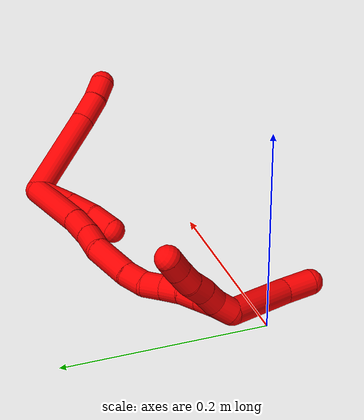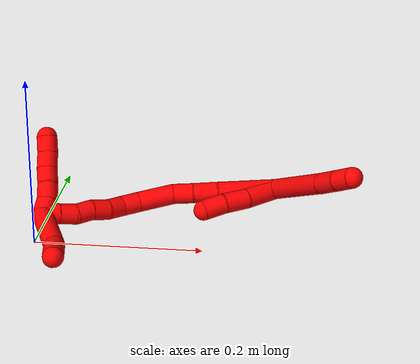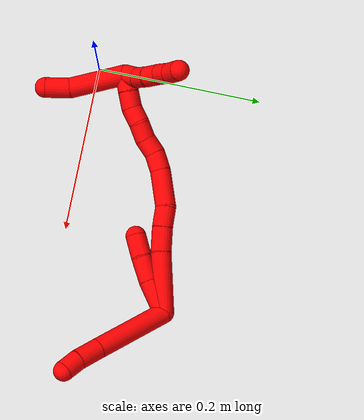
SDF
<sdf version="1.7">
 <world name="default">
  <model name="2">
   <static>0</static>
   <link name="2">
    <collision name="collision-cylinder-e_1_2_8">
     <pose>0.031932 -0.035418 -0.008827 1.81504 0.718719 0.896318</pose>
     <geometry><cylinder><radius>0.0125</radius><length>0.096995</length></cylinder></geometry>
     <surface>
      <friction><ode><mu>1.16</mu><mu2>1.16</mu2><slip1>0</slip1><slip2>0</slip2></ode></friction>
      <contact><ode><kp>1e+06</kp><kd>1</kd><max_vel>0</max_vel><min_depth>0.001</min_depth></ode></contact>
     </surface>
    </collision>
    <visual name="visual-cylinder-e_1_2_8">
     <pose>0.031932 -0.035418 -0.008827 1.81504 0.718719 0.896318</pose>
     <geometry><cylinder><radius>0.0125</radius><length>0.096995</length></cylinder></geometry>
     <material><ambient>1 0 0 1</ambient></material>
    </visual>
    <collision name="collision-cylinder-e_2_8_9">
     <pose>0.073713 -0.081998 -0.019891 1.76858 0.713271 0.853406</pose>
     <geometry><cylinder><radius>0.0125</radius><length>0.030106</length></cylinder></geometry>
     <surface>
      <friction><ode><mu>1.16</mu><mu2>1.16</mu2><slip1>0</slip1><slip2>0</slip2></ode></friction>
      <contact><ode><kp>1e+06</kp><kd>1</kd><max_vel>0</max_vel><min_depth>0.001</min_depth></ode></contact>
     </surface>
    </collision>
    <visual name="visual-cylinder-e_2_8_9">
     <pose>0.073713 -0.081998 -0.019891 1.76858 0.713271 0.853406</pose>
     <geometry><cylinder><radius>0.0125</radius><length>0.030106</length></cylinder></geometry>
     <material><ambient>1 0 0 1</ambient></material>
    </visual>
    <collision name="collision-cylinder-e_3_9_6">
     <pose>0.092023 -0.100839 -0.022862 1.6662 0.831522 0.90439</pose>
     <geometry><cylinder><radius>0.0125</radius><length>0.022899</length></cylinder></geometry>
     <surface>
      <friction><ode><mu>1.16</mu><mu2>1.16</mu2><slip1>0</slip1><slip2>0</slip2></ode></friction>
      <contact><ode><kp>1e+06</kp><kd>1</kd><max_vel>0</max_vel><min_depth>0.001</min_depth></ode></contact>
     </surface>
    </collision>
    <visual name="visual-cylinder-e_3_9_6">
     <pose>0.092023 -0.100839 -0.022862 1.6662 0.831522 0.90439</pose>
     <geometry><cylinder><radius>0.0125</radius><length>0.022899</length></cylinder></geometry>
     <material><ambient>1 0 0 1</ambient></material>
    </visual>
    <collision name="collision-cylinder-e_1_2_10">
     <pose>-0.015191 -0.007222 -0.012775 2.62709 -0.80269 -2.03171</pose>
     <geometry><cylinder><radius>0.0125</radius><length>0.042244</length></cylinder></geometry>
     <surface>
      <friction><ode><mu>1.16</mu><mu2>1.16</mu2><slip1>0</slip1><slip2>0</slip2></ode></friction>
      <contact><ode><kp>1e+06</kp><kd>1</kd><max_vel>0</max_vel><min_depth>0.001</min_depth></ode></contact>
     </surface>
    </collision>
    <visual name="visual-cylinder-e_1_2_10">
     <pose>-0.015191 -0.007222 -0.012775 2.62709 -0.80269 -2.03171</pose>
     <geometry><cylinder><radius>0.0125</radius><length>0.042244</length></cylinder></geometry>
     <material><ambient>1 0 0 1</ambient></material>
    </visual>
    <collision name="collision-cylinder-e_2_10_11">
     <pose>-0.042499 -0.019229 -0.033375 2.59274 -0.922792 -2.11114</pose>
     <geometry><cylinder><radius>0.0125</radius><length>0.030393</length></cylinder></geometry>
     <surface>
      <friction><ode><mu>1.16</mu><mu2>1.16</mu2><slip1>0</slip1><slip2>0</slip2></ode></friction>
      <contact><ode><kp>1e+06</kp><kd>1</kd><max_vel>0</max_vel><min_depth>0.001</min_depth></ode></contact>
     </surface>
    </collision>
    <visual name="visual-cylinder-e_2_10_11">
     <pose>-0.042499 -0.019229 -0.033375 2.59274 -0.922792 -2.11114</pose>
     <geometry><cylinder><radius>0.0125</radius><length>0.030393</length></cylinder></geometry>
     <material><ambient>1 0 0 1</ambient></material>
    </visual>
    <collision name="collision-cylinder-e_3_11_5">
     <pose>-0.065648 -0.026474 -0.048908 2.83263 -0.938111 -2.54535</pose>
     <geometry><cylinder><radius>0.0125</radius><length>0.027364</length></cylinder></geometry>
     <surface>
      <friction><ode><mu>1.16</mu><mu2>1.16</mu2><slip1>0</slip1><slip2>0</slip2></ode></friction>
      <contact><ode><kp>1e+06</kp><kd>1</kd><max_vel>0</max_vel><min_depth>0.001</min_depth></ode></contact>
     </surface>
    </collision>
    <visual name="visual-cylinder-e_3_11_5">
     <pose>-0.065648 -0.026474 -0.048908 2.83263 -0.938111 -2.54535</pose>
     <geometry><cylinder><radius>0.0125</radius><length>0.027364</length></cylinder></geometry>
     <material><ambient>1 0 0 1</ambient></material>
    </visual>
    <collision name="collision-cylinder-e_1_2_12">
     <pose>-0.034059 -0.007375 -0.011247 2.56121 -1.1947 -2.31428</pose>
     <geometry><cylinder><radius>0.0125</radius><length>0.073236</length></cylinder></geometry>
     <surface>
      <friction><ode><mu>1.16</mu><mu2>1.16</mu2><slip1>0</slip1><slip2>0</slip2></ode></friction>
      <contact><ode><kp>1e+06</kp><kd>1</kd><max_vel>0</max_vel><min_depth>0.001</min_depth></ode></contact>
     </surface>
    </collision>
    <visual name="visual-cylinder-e_1_2_12">
     <pose>-0.034059 -0.007375 -0.011247 2.56121 -1.1947 -2.31428</pose>
     <geometry><cylinder><radius>0.0125</radius><length>0.073236</length></cylinder></geometry>
     <material><ambient>1 0 0 1</ambient></material>
    </visual>
    <collision name="collision-cylinder-e_2_12_13">
     <pose>-0.082344 -0.01621 -0.026513 2.79307 -1.27882 -2.67667</pose>
     <geometry><cylinder><radius>0.0125</radius><length>0.02971</length></cylinder></geometry>
     <surface>
      <friction><ode><mu>1.16</mu><mu2>1.16</mu2><slip1>0</slip1><slip2>0</slip2></ode></friction>
      <contact><ode><kp>1e+06</kp><kd>1</kd><max_vel>0</max_vel><min_depth>0.001</min_depth></ode></contact>
     </surface>
    </collision>
    <visual name="visual-cylinder-e_2_12_13">
     <pose>-0.082344 -0.01621 -0.026513 2.79307 -1.27882 -2.67667</pose>
     <geometry><cylinder><radius>0.0125</radius><length>0.02971</length></cylinder></geometry>
     <material><ambient>1 0 0 1</ambient></material>
    </visual>
    <collision name="collision-cylinder-e_3_13_14">
     <pose>-0.108958 -0.017845 -0.03318 3.07582 -1.3598 -3.06026</pose>
     <geometry><cylinder><radius>0.0125</radius><length>0.025338</length></cylinder></geometry>
     <surface>
      <friction><ode><mu>1.16</mu><mu2>1.16</mu2><slip1>0</slip1><slip2>0</slip2></ode></friction>
      <contact><ode><kp>1e+06</kp><kd>1</kd><max_vel>0</max_vel><min_depth>0.001</min_depth></ode></contact>
     </surface>
    </collision>
    <visual name="visual-cylinder-e_3_13_14">
     <pose>-0.108958 -0.017845 -0.03318 3.07582 -1.3598 -3.06026</pose>
     <geometry><cylinder><radius>0.0125</radius><length>0.025338</length></cylinder></geometry>
     <material><ambient>1 0 0 1</ambient></material>
    </visual>
    <collision name="collision-cylinder-e_4_14_15">
     <pose>-0.141075 -0.021268 -0.046357 2.84232 -1.0614 -2.63866</pose>
     <geometry><cylinder><radius>0.0125</radius><length>0.045196</length></cylinder></geometry>
     <surface>
      <friction><ode><mu>1.16</mu><mu2>1.16</mu2><slip1>0</slip1><slip2>0</slip2></ode></friction>
      <contact><ode><kp>1e+06</kp><kd>1</kd><max_vel>0</max_vel><min_depth>0.001</min_depth></ode></contact>
     </surface>
    </collision>
    <visual name="visual-cylinder-e_4_14_15">
     <pose>-0.141075 -0.021268 -0.046357 2.84232 -1.0614 -2.63866</pose>
     <geometry><cylinder><radius>0.0125</radius><length>0.045196</length></cylinder></geometry>
     <material><ambient>1 0 0 1</ambient></material>
    </visual>
    <collision name="collision-cylinder-e_5_15_16">
     <pose>-0.169914 -0.027744 -0.062934 2.65143 -0.925806 -2.21245</pose>
     <geometry><cylinder><radius>0.0125</radius><length>0.022801</length></cylinder></geometry>
     <surface>
      <friction><ode><mu>1.16</mu><mu2>1.16</mu2><slip1>0</slip1><slip2>0</slip2></ode></friction>
      <contact><ode><kp>1e+06</kp><kd>1</kd><max_vel>0</max_vel><min_depth>0.001</min_depth></ode></contact>
     </surface>
    </collision>
    <visual name="visual-cylinder-e_5_15_16">
     <pose>-0.169914 -0.027744 -0.062934 2.65143 -0.925806 -2.21245</pose>
     <geometry><cylinder><radius>0.0125</radius><length>0.022801</length></cylinder></geometry>
     <material><ambient>1 0 0 1</ambient></material>
    </visual>
    <collision name="collision-cylinder-e_6_16_17">
     <pose>-0.18538 -0.036616 -0.07512 2.39808 -0.651198 -1.42735</pose>
     <geometry><cylinder><radius>0.0125</radius><length>0.020971</length></cylinder></geometry>
     <surface>
      <friction><ode><mu>1.16</mu><mu2>1.16</mu2><slip1>0</slip1><slip2>0</slip2></ode></friction>
      <contact><ode><kp>1e+06</kp><kd>1</kd><max_vel>0</max_vel><min_depth>0.001</min_depth></ode></contact>
     </surface>
    </collision>
    <visual name="visual-cylinder-e_6_16_17">
     <pose>-0.18538 -0.036616 -0.07512 2.39808 -0.651198 -1.42735</pose>
     <geometry><cylinder><radius>0.0125</radius><length>0.020971</length></cylinder></geometry>
     <material><ambient>1 0 0 1</ambient></material>
    </visual>
    <collision name="collision-cylinder-e_7_17_18">
     <pose>-0.199776 -0.047784 -0.085455 2.22042 -0.858986 -1.49083</pose>
     <geometry><cylinder><radius>0.0125</radius><length>0.021238</length></cylinder></geometry>
     <surface>
      <friction><ode><mu>1.16</mu><mu2>1.16</mu2><slip1>0</slip1><slip2>0</slip2></ode></friction>
      <contact><ode><kp>1e+06</kp><kd>1</kd><max_vel>0</max_vel><min_depth>0.001</min_depth></ode></contact>
     </surface>
    </collision>
    <visual name="visual-cylinder-e_7_17_18">
     <pose>-0.199776 -0.047784 -0.085455 2.22042 -0.858986 -1.49083</pose>
     <geometry><cylinder><radius>0.0125</radius><length>0.021238</length></cylinder></geometry>
     <material><ambient>1 0 0 1</ambient></material>
    </visual>
    <collision name="collision-cylinder-e_8_18_19">
     <pose>-0.214997 -0.057254 -0.095654 2.55999 -0.785113 -1.88982</pose>
     <geometry><cylinder><radius>0.0125</radius><length>0.020315</length></cylinder></geometry>
     <surface>
      <friction><ode><mu>1.16</mu><mu2>1.16</mu2><slip1>0</slip1><slip2>0</slip2></ode></friction>
      <contact><ode><kp>1e+06</kp><kd>1</kd><max_vel>0</max_vel><min_depth>0.001</min_depth></ode></contact>
     </surface>
    </collision>
    <visual name="visual-cylinder-e_8_18_19">
     <pose>-0.214997 -0.057254 -0.095654 2.55999 -0.785113 -1.88982</pose>
     <geometry><cylinder><radius>0.0125</radius><length>0.020315</length></cylinder></geometry>
     <material><ambient>1 0 0 1</ambient></material>
    </visual>
    <collision name="collision-cylinder-e_9_19_20">
     <pose>-0.231275 -0.065513 -0.104881 2.21281 -1.03642 -1.69993</pose>
     <geometry><cylinder><radius>0.0125</radius><length>0.021143</length></cylinder></geometry>
     <surface>
      <friction><ode><mu>1.16</mu><mu2>1.16</mu2><slip1>0</slip1><slip2>0</slip2></ode></friction>
      <contact><ode><kp>1e+06</kp><kd>1</kd><max_vel>0</max_vel><min_depth>0.001</min_depth></ode></contact>
     </surface>
    </collision>
    <visual name="visual-cylinder-e_9_19_20">
     <pose>-0.231275 -0.065513 -0.104881 2.21281 -1.03642 -1.69993</pose>
     <geometry><cylinder><radius>0.0125</radius><length>0.021143</length></cylinder></geometry>
     <material><ambient>1 0 0 1</ambient></material>
    </visual>
    <collision name="collision-cylinder-e_10_20_1">
     <pose>-0.249108 -0.073227 -0.111661 2.37833 -1.05775 -1.93812</pose>
     <geometry><cylinder><radius>0.0125</radius><length>0.020052</length></cylinder></geometry>
     <surface>
      <friction><ode><mu>1.16</mu><mu2>1.16</mu2><slip1>0</slip1><slip2>0</slip2></ode></friction>
      <contact><ode><kp>1e+06</kp><kd>1</kd><max_vel>0</max_vel><min_depth>0.001</min_depth></ode></contact>
     </surface>
    </collision>
    <visual name="visual-cylinder-e_10_20_1">
     <pose>-0.249108 -0.073227 -0.111661 2.37833 -1.05775 -1.93812</pose>
     <geometry><cylinder><radius>0.0125</radius><length>0.020052</length></cylinder></geometry>
     <material><ambient>1 0 0 1</ambient></material>
    </visual>
    <collision name="collision-cylinder-e_1_1_21">
     <pose>-0.239623 -0.092965 -0.139918 2.55728 0.551548 1.5099</pose>
     <geometry><cylinder><radius>0.0125</radius><length>0.06954</length></cylinder></geometry>
     <surface>
      <friction><ode><mu>1.16</mu><mu2>1.16</mu2><slip1>0</slip1><slip2>0</slip2></ode></friction>
      <contact><ode><kp>1e+06</kp><kd>1</kd><max_vel>0</max_vel><min_depth>0.001</min_depth></ode></contact>
     </surface>
    </collision>
    <visual name="visual-cylinder-e_1_1_21">
     <pose>-0.239623 -0.092965 -0.139918 2.55728 0.551548 1.5099</pose>
     <geometry><cylinder><radius>0.0125</radius><length>0.06954</length></cylinder></geometry>
     <material><ambient>1 0 0 1</ambient></material>
    </visual>
    <collision name="collision-cylinder-e_2_21_4">
     <pose>-0.216798 -0.119086 -0.175342 2.40194 0.307225 0.759971</pose>
     <geometry><cylinder><radius>0.0125</radius><length>0.03046</length></cylinder></geometry>
     <surface>
      <friction><ode><mu>1.16</mu><mu2>1.16</mu2><slip1>0</slip1><slip2>0</slip2></ode></friction>
      <contact><ode><kp>1e+06</kp><kd>1</kd><max_vel>0</max_vel><min_depth>0.001</min_depth></ode></contact>
     </surface>
    </collision>
    <visual name="visual-cylinder-e_2_21_4">
     <pose>-0.216798 -0.119086 -0.175342 2.40194 0.307225 0.759971</pose>
     <geometry><cylinder><radius>0.0125</radius><length>0.03046</length></cylinder></geometry>
     <material><ambient>1 0 0 1</ambient></material>
    </visual>
    <collision name="collision-cylinder-e_1_1_22">
     <pose>-0.257919 -0.07623 -0.105225 -0.03998 -0.007633 0.000153</pose>
     <geometry><cylinder><radius>0.0125</radius><length>0.02</length></cylinder></geometry>
     <surface>
      <friction><ode><mu>1.16</mu><mu2>1.16</mu2><slip1>0</slip1><slip2>0</slip2></ode></friction>
      <contact><ode><kp>1e+06</kp><kd>1</kd><max_vel>0</max_vel><min_depth>0.001</min_depth></ode></contact>
     </surface>
    </collision>
    <visual name="visual-cylinder-e_1_1_22">
     <pose>-0.257919 -0.07623 -0.105225 -0.03998 -0.007633 0.000153</pose>
     <geometry><cylinder><radius>0.0125</radius><length>0.02</length></cylinder></geometry>
     <material><ambient>1 0 0 1</ambient></material>
    </visual>
    <collision name="collision-cylinder-e_2_22_23">
     <pose>-0.259786 -0.077909 -0.085617 0.212898 -0.18005 -0.01929</pose>
     <geometry><cylinder><radius>0.0125</radius><length>0.02</length></cylinder></geometry>
     <surface>
      <friction><ode><mu>1.16</mu><mu2>1.16</mu2><slip1>0</slip1><slip2>0</slip2></ode></friction>
      <contact><ode><kp>1e+06</kp><kd>1</kd><max_vel>0</max_vel><min_depth>0.001</min_depth></ode></contact>
     </surface>
    </collision>
    <visual name="visual-cylinder-e_2_22_23">
     <pose>-0.259786 -0.077909 -0.085617 0.212898 -0.18005 -0.01929</pose>
     <geometry><cylinder><radius>0.0125</radius><length>0.02</length></cylinder></geometry>
     <material><ambient>1 0 0 1</ambient></material>
    </visual>
    <collision name="collision-cylinder-e_3_23_24">
     <pose>-0.264639 -0.080866 -0.066522 0.092465 -0.311198 -0.014515</pose>
     <geometry><cylinder><radius>0.0125</radius><length>0.02</length></cylinder></geometry>
     <surface>
      <friction><ode><mu>1.16</mu><mu2>1.16</mu2><slip1>0</slip1><slip2>0</slip2></ode></friction>
      <contact><ode><kp>1e+06</kp><kd>1</kd><max_vel>0</max_vel><min_depth>0.001</min_depth></ode></contact>
     </surface>
    </collision>
    <visual name="visual-cylinder-e_3_23_24">
     <pose>-0.264639 -0.080866 -0.066522 0.092465 -0.311198 -0.014515</pose>
     <geometry><cylinder><radius>0.0125</radius><length>0.02</length></cylinder></geometry>
     <material><ambient>1 0 0 1</ambient></material>
    </visual>
    <collision name="collision-cylinder-e_4_24_25">
     <pose>-0.269426 -0.084115 -0.047482 0.243003 -0.173324 -0.021216</pose>
     <geometry><cylinder><radius>0.0125</radius><length>0.02</length></cylinder></geometry>
     <surface>
      <friction><ode><mu>1.16</mu><mu2>1.16</mu2><slip1>0</slip1><slip2>0</slip2></ode></friction>
      <contact><ode><kp>1e+06</kp><kd>1</kd><max_vel>0</max_vel><min_depth>0.001</min_depth></ode></contact>
     </surface>
    </collision>
    <visual name="visual-cylinder-e_4_24_25">
     <pose>-0.269426 -0.084115 -0.047482 0.243003 -0.173324 -0.021216</pose>
     <geometry><cylinder><radius>0.0125</radius><length>0.02</length></cylinder></geometry>
     <material><ambient>1 0 0 1</ambient></material>
    </visual>
    <collision name="collision-cylinder-e_5_25_3">
     <pose>-0.273581 -0.0896 -0.028735 0.326837 -0.245555 -0.040688</pose>
     <geometry><cylinder><radius>0.0125</radius><length>0.02</length></cylinder></geometry>
     <surface>
      <friction><ode><mu>1.16</mu><mu2>1.16</mu2><slip1>0</slip1><slip2>0</slip2></ode></friction>
      <contact><ode><kp>1e+06</kp><kd>1</kd><max_vel>0</max_vel><min_depth>0.001</min_depth></ode></contact>
     </surface>
    </collision>
    <visual name="visual-cylinder-e_5_25_3">
     <pose>-0.273581 -0.0896 -0.028735 0.326837 -0.245555 -0.040688</pose>
     <geometry><cylinder><radius>0.0125</radius><length>0.02</length></cylinder></geometry>
     <material><ambient>1 0 0 1</ambient></material>
    </visual>
    <collision name="collision-sphere-3">
     <pose>-0.276012 -0.092714 -0.019548 0 -0 0</pose>
     <geometry><sphere><radius>0.0125</radius></sphere></geometry>
     <surface>
      <friction><ode><mu>1.16</mu><mu2>1.16</mu2><slip1>0</slip1><slip2>0</slip2></ode></friction>
      <contact><ode><kp>1e+06</kp><kd>1</kd><max_vel>0</max_vel><min_depth>0.001</min_depth></ode></contact>
     </surface>
    </collision>
    <visual name="visual-sphere-3">
     <pose>-0.276012 -0.092714 -0.019548 0 -0 0</pose>
     <geometry><sphere><radius>0.0125</radius></sphere></geometry>
     <material><ambient>1 0 0 1</ambient></material>
    </visual>
    <collision name="collision-sphere-25">
     <pose>-0.27115 -0.086486 -0.037921 0 -0 0</pose>
     <geometry><sphere><radius>0.0125</radius></sphere></geometry>
     <surface>
      <friction><ode><mu>1.16</mu><mu2>1.16</mu2><slip1>0</slip1><slip2>0</slip2></ode></friction>
      <contact><ode><kp>1e+06</kp><kd>1</kd><max_vel>0</max_vel><min_depth>0.001</min_depth></ode></contact>
     </surface>
    </collision>
    <visual name="visual-sphere-25">
     <pose>-0.27115 -0.086486 -0.037921 0 -0 0</pose>
     <geometry><sphere><radius>0.0125</radius></sphere></geometry>
     <material><ambient>1 0 0 1</ambient></material>
    </visual>
    <collision name="collision-sphere-24">
     <pose>-0.267701 -0.081745 -0.057043 0 -0 0</pose>
     <geometry><sphere><radius>0.0125</radius></sphere></geometry>
     <surface>
      <friction><ode><mu>1.16</mu><mu2>1.16</mu2><slip1>0</slip1><slip2>0</slip2></ode></friction>
      <contact><ode><kp>1e+06</kp><kd>1</kd><max_vel>0</max_vel><min_depth>0.001</min_depth></ode></contact>
     </surface>
    </collision>
    <visual name="visual-sphere-24">
     <pose>-0.267701 -0.081745 -0.057043 0 -0 0</pose>
     <geometry><sphere><radius>0.0125</radius></sphere></geometry>
     <material><ambient>1 0 0 1</ambient></material>
    </visual>
    <collision name="collision-sphere-23">
     <pose>-0.261577 -0.079987 -0.076001 0 -0 0</pose>
     <geometry><sphere><radius>0.0125</radius></sphere></geometry>
     <surface>
      <friction><ode><mu>1.16</mu><mu2>1.16</mu2><slip1>0</slip1><slip2>0</slip2></ode></friction>
      <contact><ode><kp>1e+06</kp><kd>1</kd><max_vel>0</max_vel><min_depth>0.001</min_depth></ode></contact>
     </surface>
    </collision>
    <visual name="visual-sphere-23">
     <pose>-0.261577 -0.079987 -0.076001 0 -0 0</pose>
     <geometry><sphere><radius>0.0125</radius></sphere></geometry>
     <material><ambient>1 0 0 1</ambient></material>
    </visual>
    <collision name="collision-sphere-22">
     <pose>-0.257996 -0.07583 -0.095233 0 -0 0</pose>
     <geometry><sphere><radius>0.0125</radius></sphere></geometry>
     <surface>
      <friction><ode><mu>1.16</mu><mu2>1.16</mu2><slip1>0</slip1><slip2>0</slip2></ode></friction>
      <contact><ode><kp>1e+06</kp><kd>1</kd><max_vel>0</max_vel><min_depth>0.001</min_depth></ode></contact>
     </surface>
    </collision>
    <visual name="visual-sphere-22">
     <pose>-0.257996 -0.07583 -0.095233 0 -0 0</pose>
     <geometry><sphere><radius>0.0125</radius></sphere></geometry>
     <material><ambient>1 0 0 1</ambient></material>
    </visual>
    <collision name="collision-sphere-4">
     <pose>-0.212192 -0.128871 -0.186066 0 -0 0</pose>
     <geometry><sphere><radius>0.0125</radius></sphere></geometry>
     <surface>
      <friction><ode><mu>1.16</mu><mu2>1.16</mu2><slip1>0</slip1><slip2>0</slip2></ode></friction>
      <contact><ode><kp>1e+06</kp><kd>1</kd><max_vel>0</max_vel><min_depth>0.001</min_depth></ode></contact>
     </surface>
    </collision>
    <visual name="visual-sphere-4">
     <pose>-0.212192 -0.128871 -0.186066 0 -0 0</pose>
     <geometry><sphere><radius>0.0125</radius></sphere></geometry>
     <material><ambient>1 0 0 1</ambient></material>
    </visual>
    <collision name="collision-sphere-21">
     <pose>-0.221404 -0.109301 -0.164618 0 -0 0</pose>
     <geometry><sphere><radius>0.0125</radius></sphere></geometry>
     <surface>
      <friction><ode><mu>1.16</mu><mu2>1.16</mu2><slip1>0</slip1><slip2>0</slip2></ode></friction>
      <contact><ode><kp>1e+06</kp><kd>1</kd><max_vel>0</max_vel><min_depth>0.001</min_depth></ode></contact>
     </surface>
    </collision>
    <visual name="visual-sphere-21">
     <pose>-0.221404 -0.109301 -0.164618 0 -0 0</pose>
     <geometry><sphere><radius>0.0125</radius></sphere></geometry>
     <material><ambient>1 0 0 1</ambient></material>
    </visual>
    <collision name="collision-sphere-1">
     <pose>-0.257843 -0.076629 -0.115217 0 -0 0</pose>
     <geometry><sphere><radius>0.0125</radius></sphere></geometry>
     <surface>
      <friction><ode><mu>1.16</mu><mu2>1.16</mu2><slip1>0</slip1><slip2>0</slip2></ode></friction>
      <contact><ode><kp>1e+06</kp><kd>1</kd><max_vel>0</max_vel><min_depth>0.001</min_depth></ode></contact>
     </surface>
    </collision>
    <visual name="visual-sphere-1">
     <pose>-0.257843 -0.076629 -0.115217 0 -0 0</pose>
     <geometry><sphere><radius>0.0125</radius></sphere></geometry>
     <material><ambient>1 0 0 1</ambient></material>
    </visual>
    <collision name="collision-sphere-11">
     <pose>-0.054615 -0.024014 -0.041201 0 -0 0</pose>
     <geometry><sphere><radius>0.0125</radius></sphere></geometry>
     <surface>
      <friction><ode><mu>1.16</mu><mu2>1.16</mu2><slip1>0</slip1><slip2>0</slip2></ode></friction>
      <contact><ode><kp>1e+06</kp><kd>1</kd><max_vel>0</max_vel><min_depth>0.001</min_depth></ode></contact>
     </surface>
    </collision>
    <visual name="visual-sphere-11">
     <pose>-0.054615 -0.024014 -0.041201 0 -0 0</pose>
     <geometry><sphere><radius>0.0125</radius></sphere></geometry>
     <material><ambient>1 0 0 1</ambient></material>
    </visual>
    <collision name="collision-sphere-10">
     <pose>-0.030383 -0.014443 -0.02555 0 -0 0</pose>
     <geometry><sphere><radius>0.0125</radius></sphere></geometry>
     <surface>
      <friction><ode><mu>1.16</mu><mu2>1.16</mu2><slip1>0</slip1><slip2>0</slip2></ode></friction>
      <contact><ode><kp>1e+06</kp><kd>1</kd><max_vel>0</max_vel><min_depth>0.001</min_depth></ode></contact>
     </surface>
    </collision>
    <visual name="visual-sphere-10">
     <pose>-0.030383 -0.014443 -0.02555 0 -0 0</pose>
     <geometry><sphere><radius>0.0125</radius></sphere></geometry>
     <material><ambient>1 0 0 1</ambient></material>
    </visual>
    <collision name="collision-sphere-6">
     <pose>0.100484 -0.108518 -0.023597 0 -0 0</pose>
     <geometry><sphere><radius>0.0125</radius></sphere></geometry>
     <surface>
      <friction><ode><mu>1.16</mu><mu2>1.16</mu2><slip1>0</slip1><slip2>0</slip2></ode></friction>
      <contact><ode><kp>1e+06</kp><kd>1</kd><max_vel>0</max_vel><min_depth>0.001</min_depth></ode></contact>
     </surface>
    </collision>
    <visual name="visual-sphere-6">
     <pose>0.100484 -0.108518 -0.023597 0 -0 0</pose>
     <geometry><sphere><radius>0.0125</radius></sphere></geometry>
     <material><ambient>1 0 0 1</ambient></material>
    </visual>
    <collision name="collision-sphere-9">
     <pose>0.083562 -0.09316 -0.022127 0 -0 0</pose>
     <geometry><sphere><radius>0.0125</radius></sphere></geometry>
     <surface>
      <friction><ode><mu>1.16</mu><mu2>1.16</mu2><slip1>0</slip1><slip2>0</slip2></ode></friction>
      <contact><ode><kp>1e+06</kp><kd>1</kd><max_vel>0</max_vel><min_depth>0.001</min_depth></ode></contact>
     </surface>
    </collision>
    <visual name="visual-sphere-9">
     <pose>0.083562 -0.09316 -0.022127 0 -0 0</pose>
     <geometry><sphere><radius>0.0125</radius></sphere></geometry>
     <material><ambient>1 0 0 1</ambient></material>
    </visual>
    <collision name="collision-sphere-2">
     <geometry><sphere><radius>0.0125</radius></sphere></geometry>
     <surface>
      <friction><ode><mu>1.16</mu><mu2>1.16</mu2><slip1>0</slip1><slip2>0</slip2></ode></friction>
      <contact><ode><kp>1e+06</kp><kd>1</kd><max_vel>0</max_vel><min_depth>0.001</min_depth></ode></contact>
     </surface>
    </collision>
    <visual name="visual-sphere-2">
     <geometry><sphere><radius>0.0125</radius></sphere></geometry>
     <material><ambient>1 0 0 1</ambient></material>
    </visual>
    <collision name="collision-sphere-19">
     <pose>-0.222178 -0.061201 -0.101657 0 -0 0</pose>
     <geometry><sphere><radius>0.0125</radius></sphere></geometry>
     <surface>
      <friction><ode><mu>1.16</mu><mu2>1.16</mu2><slip1>0</slip1><slip2>0</slip2></ode></friction>
      <contact><ode><kp>1e+06</kp><kd>1</kd><max_vel>0</max_vel><min_depth>0.001</min_depth></ode></contact>
     </surface>
    </collision>
    <visual name="visual-sphere-19">
     <pose>-0.222178 -0.061201 -0.101657 0 -0 0</pose>
     <geometry><sphere><radius>0.0125</radius></sphere></geometry>
     <material><ambient>1 0 0 1</ambient></material>
    </visual>
    <collision name="collision-sphere-8">
     <pose>0.063864 -0.070837 -0.017654 0 -0 0</pose>
     <geometry><sphere><radius>0.0125</radius></sphere></geometry>
     <surface>
      <friction><ode><mu>1.16</mu><mu2>1.16</mu2><slip1>0</slip1><slip2>0</slip2></ode></friction>
      <contact><ode><kp>1e+06</kp><kd>1</kd><max_vel>0</max_vel><min_depth>0.001</min_depth></ode></contact>
     </surface>
    </collision>
    <visual name="visual-sphere-8">
     <pose>0.063864 -0.070837 -0.017654 0 -0 0</pose>
     <geometry><sphere><radius>0.0125</radius></sphere></geometry>
     <material><ambient>1 0 0 1</ambient></material>
    </visual>
    <collision name="collision-sphere-5">
     <pose>-0.076682 -0.028934 -0.056615 0 -0 0</pose>
     <geometry><sphere><radius>0.0125</radius></sphere></geometry>
     <surface>
      <friction><ode><mu>1.16</mu><mu2>1.16</mu2><slip1>0</slip1><slip2>0</slip2></ode></friction>
      <contact><ode><kp>1e+06</kp><kd>1</kd><max_vel>0</max_vel><min_depth>0.001</min_depth></ode></contact>
     </surface>
    </collision>
    <visual name="visual-sphere-5">
     <pose>-0.076682 -0.028934 -0.056615 0 -0 0</pose>
     <geometry><sphere><radius>0.0125</radius></sphere></geometry>
     <material><ambient>1 0 0 1</ambient></material>
    </visual>
    <collision name="collision-sphere-12">
     <pose>-0.068118 -0.01475 -0.022495 0 -0 0</pose>
     <geometry><sphere><radius>0.0125</radius></sphere></geometry>
     <surface>
      <friction><ode><mu>1.16</mu><mu2>1.16</mu2><slip1>0</slip1><slip2>0</slip2></ode></friction>
      <contact><ode><kp>1e+06</kp><kd>1</kd><max_vel>0</max_vel><min_depth>0.001</min_depth></ode></contact>
     </surface>
    </collision>
    <visual name="visual-sphere-12">
     <pose>-0.068118 -0.01475 -0.022495 0 -0 0</pose>
     <geometry><sphere><radius>0.0125</radius></sphere></geometry>
     <material><ambient>1 0 0 1</ambient></material>
    </visual>
    <collision name="collision-sphere-13">
     <pose>-0.096571 -0.017671 -0.030532 0 -0 0</pose>
     <geometry><sphere><radius>0.0125</radius></sphere></geometry>
     <surface>
      <friction><ode><mu>1.16</mu><mu2>1.16</mu2><slip1>0</slip1><slip2>0</slip2></ode></friction>
      <contact><ode><kp>1e+06</kp><kd>1</kd><max_vel>0</max_vel><min_depth>0.001</min_depth></ode></contact>
     </surface>
    </collision>
    <visual name="visual-sphere-13">
     <pose>-0.096571 -0.017671 -0.030532 0 -0 0</pose>
     <geometry><sphere><radius>0.0125</radius></sphere></geometry>
     <material><ambient>1 0 0 1</ambient></material>
    </visual>
    <collision name="collision-sphere-14">
     <pose>-0.121346 -0.018019 -0.035827 0 -0 0</pose>
     <geometry><sphere><radius>0.0125</radius></sphere></geometry>
     <surface>
      <friction><ode><mu>1.16</mu><mu2>1.16</mu2><slip1>0</slip1><slip2>0</slip2></ode></friction>
      <contact><ode><kp>1e+06</kp><kd>1</kd><max_vel>0</max_vel><min_depth>0.001</min_depth></ode></contact>
     </surface>
    </collision>
    <visual name="visual-sphere-14">
     <pose>-0.121346 -0.018019 -0.035827 0 -0 0</pose>
     <geometry><sphere><radius>0.0125</radius></sphere></geometry>
     <material><ambient>1 0 0 1</ambient></material>
    </visual>
    <collision name="collision-sphere-15">
     <pose>-0.160804 -0.024517 -0.056887 0 -0 0</pose>
     <geometry><sphere><radius>0.0125</radius></sphere></geometry>
     <surface>
      <friction><ode><mu>1.16</mu><mu2>1.16</mu2><slip1>0</slip1><slip2>0</slip2></ode></friction>
      <contact><ode><kp>1e+06</kp><kd>1</kd><max_vel>0</max_vel><min_depth>0.001</min_depth></ode></contact>
     </surface>
    </collision>
    <visual name="visual-sphere-15">
     <pose>-0.160804 -0.024517 -0.056887 0 -0 0</pose>
     <geometry><sphere><radius>0.0125</radius></sphere></geometry>
     <material><ambient>1 0 0 1</ambient></material>
    </visual>
    <collision name="collision-sphere-16">
     <pose>-0.179024 -0.030971 -0.068981 0 -0 0</pose>
     <geometry><sphere><radius>0.0125</radius></sphere></geometry>
     <surface>
      <friction><ode><mu>1.16</mu><mu2>1.16</mu2><slip1>0</slip1><slip2>0</slip2></ode></friction>
      <contact><ode><kp>1e+06</kp><kd>1</kd><max_vel>0</max_vel><min_depth>0.001</min_depth></ode></contact>
     </surface>
    </collision>
    <visual name="visual-sphere-16">
     <pose>-0.179024 -0.030971 -0.068981 0 -0 0</pose>
     <geometry><sphere><radius>0.0125</radius></sphere></geometry>
     <material><ambient>1 0 0 1</ambient></material>
    </visual>
    <collision name="collision-sphere-17">
     <pose>-0.191736 -0.042261 -0.081259 0 -0 0</pose>
     <geometry><sphere><radius>0.0125</radius></sphere></geometry>
     <surface>
      <friction><ode><mu>1.16</mu><mu2>1.16</mu2><slip1>0</slip1><slip2>0</slip2></ode></friction>
      <contact><ode><kp>1e+06</kp><kd>1</kd><max_vel>0</max_vel><min_depth>0.001</min_depth></ode></contact>
     </surface>
    </collision>
    <visual name="visual-sphere-17">
     <pose>-0.191736 -0.042261 -0.081259 0 -0 0</pose>
     <geometry><sphere><radius>0.0125</radius></sphere></geometry>
     <material><ambient>1 0 0 1</ambient></material>
    </visual>
    <collision name="collision-sphere-18">
     <pose>-0.207817 -0.053308 -0.08965 0 -0 0</pose>
     <geometry><sphere><radius>0.0125</radius></sphere></geometry>
     <surface>
      <friction><ode><mu>1.16</mu><mu2>1.16</mu2><slip1>0</slip1><slip2>0</slip2></ode></friction>
      <contact><ode><kp>1e+06</kp><kd>1</kd><max_vel>0</max_vel><min_depth>0.001</min_depth></ode></contact>
     </surface>
    </collision>
    <visual name="visual-sphere-18">
     <pose>-0.207817 -0.053308 -0.08965 0 -0 0</pose>
     <geometry><sphere><radius>0.0125</radius></sphere></geometry>
     <material><ambient>1 0 0 1</ambient></material>
    </visual>
    <collision name="collision-sphere-20">
     <pose>-0.240373 -0.069826 -0.108105 0 -0 0</pose>
     <geometry><sphere><radius>0.0125</radius></sphere></geometry>
     <surface>
      <friction><ode><mu>1.16</mu><mu2>1.16</mu2><slip1>0</slip1><slip2>0</slip2></ode></friction>
      <contact><ode><kp>1e+06</kp><kd>1</kd><max_vel>0</max_vel><min_depth>0.001</min_depth></ode></contact>
     </surface>
    </collision>
    <visual name="visual-sphere-20">
     <pose>-0.240373 -0.069826 -0.108105 0 -0 0</pose>
     <geometry><sphere><radius>0.0125</radius></sphere></geometry>
     <material><ambient>1 0 0 1</ambient></material>
    </visual>
    <inertial>
     <pose>-0.11522 -0.049281 -0.056514 0 -0 0</pose>
     <mass>0.75</mass>
     <inertia><ixx>6.7e-05</ixx><ixy>0</ixy><ixz>0</ixz><iyy>0.000139</iyy><iyz>0</iyz><izz>7.7e-05</izz></inertia>
    </inertial>
   </link>
   <pose>0.276656 0.137463 0.022507 -0.875979 0.051846 -0.127167</pose>
  </model>
 </world>
</sdf>
